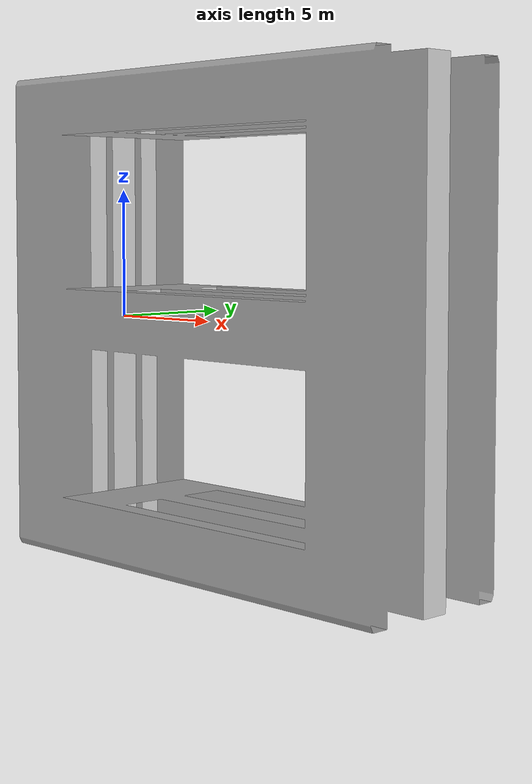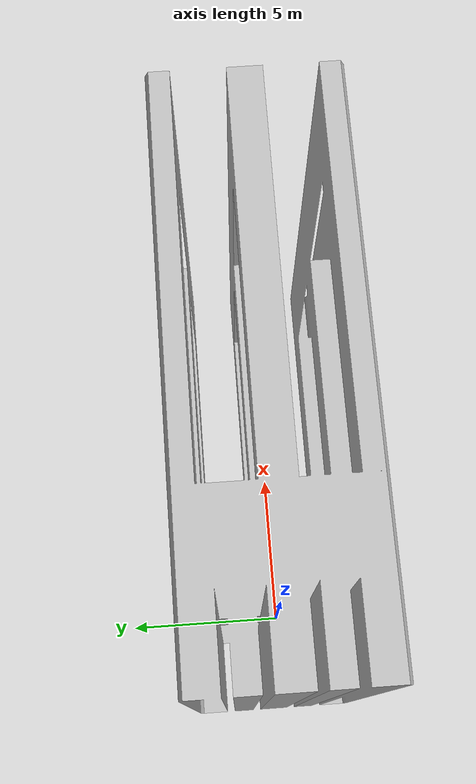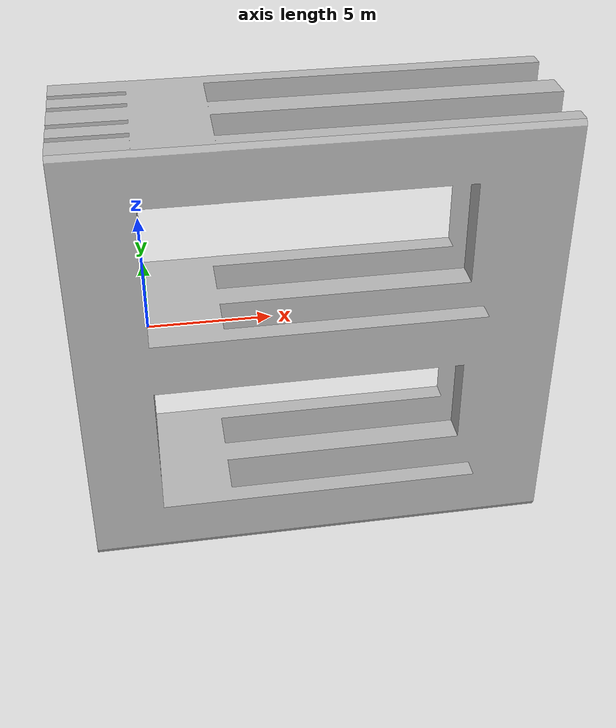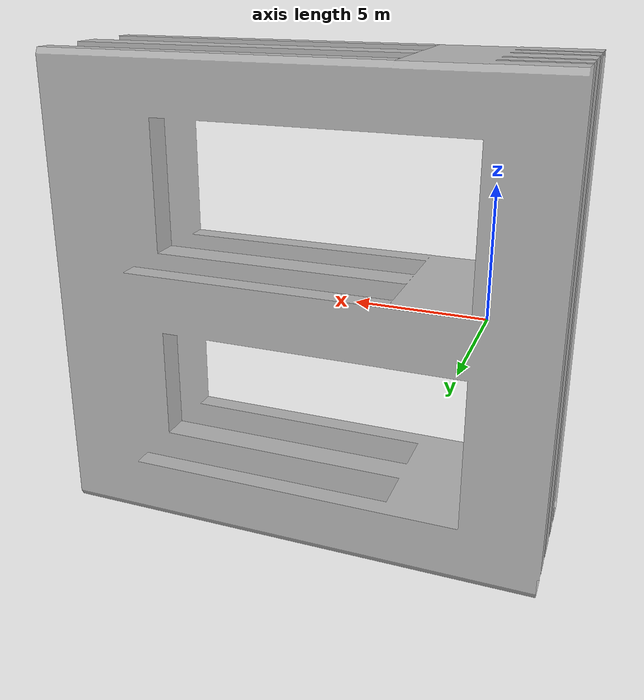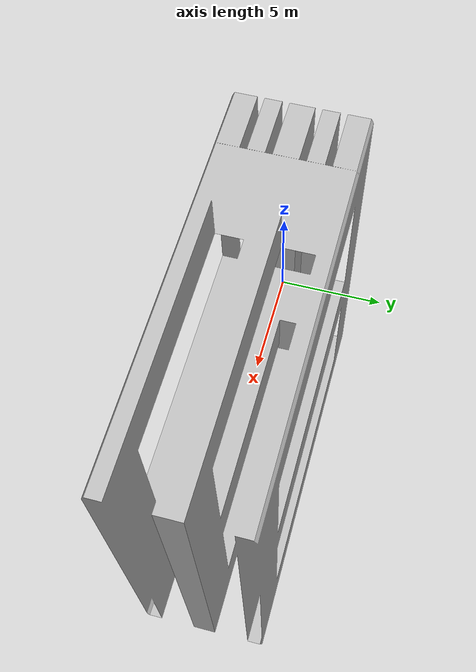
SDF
<?xml version="1.0" ?>
<sdf version="1.4">
	<model name="pallet">
		<static>true</static>
		<link name="link">
			<pose>0 0 0.07 0 0 1.5708</pose>
			<collision name="collision">
				<geometry>
					<mesh>
						<uri>model://pallet_benchmark/mesh/pallet.dae</uri>
						<!-- original size = 1.016 x 0.090678 x 0.090678 m -->
						<!-- final size = 0.8 x 1.2 x 0.14 m -->
						<scale>0.7874 13.2336 1.5439</scale>
					</mesh>
				</geometry>
				<surface>
					<bounce>
						<restitution_coefficient>0.01</restitution_coefficient>
						<threshold>5.0</threshold>
					</bounce>
					<friction>
						<ode>
							<mu>10</mu>
							<mu2>10</mu2>
						</ode>
					</friction>
					<contact>
						<ode>
							<soft_cfm>0.001</soft_cfm>
							<kp>100000.0</kp>
							<kd>1000.0</kd>
						</ode>
					</contact>
				</surface>
			</collision>
			<visual name="visual">
				<geometry>
					<mesh>
						<uri>model://pallet_benchmark/mesh/pallet.dae</uri>
						<!-- original size = 1.016 x 0.090678 x 0.090678 m -->
						<!-- final size = 0.8 x 1.2 x 0.14 m -->
						<scale>0.7874 13.2336 1.5439</scale>
					</mesh>
				</geometry>
			</visual>
		</link>
	</model>
</sdf>
